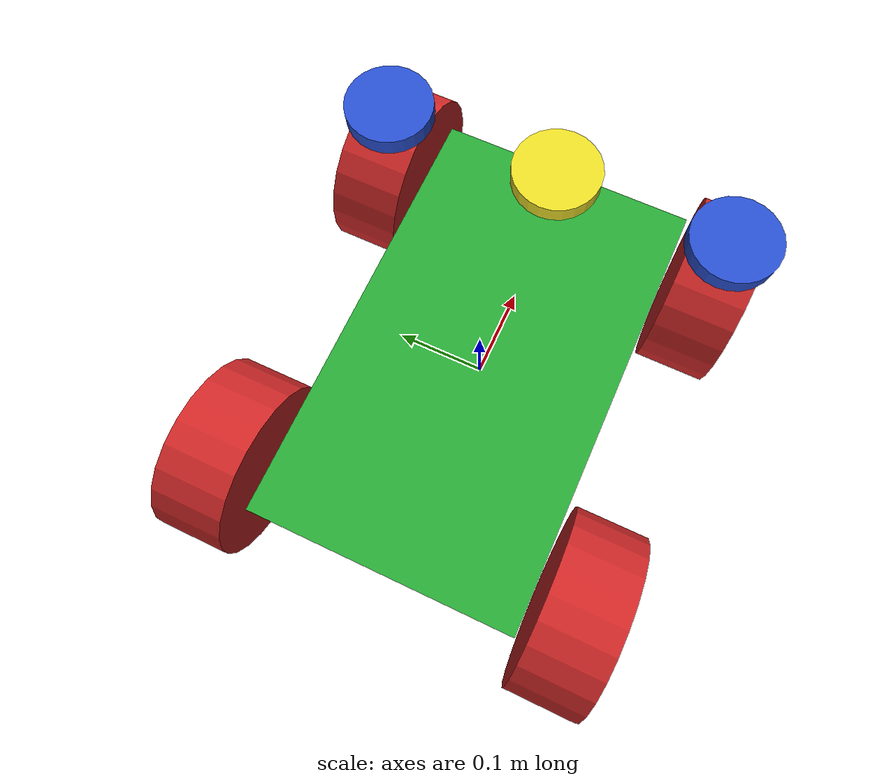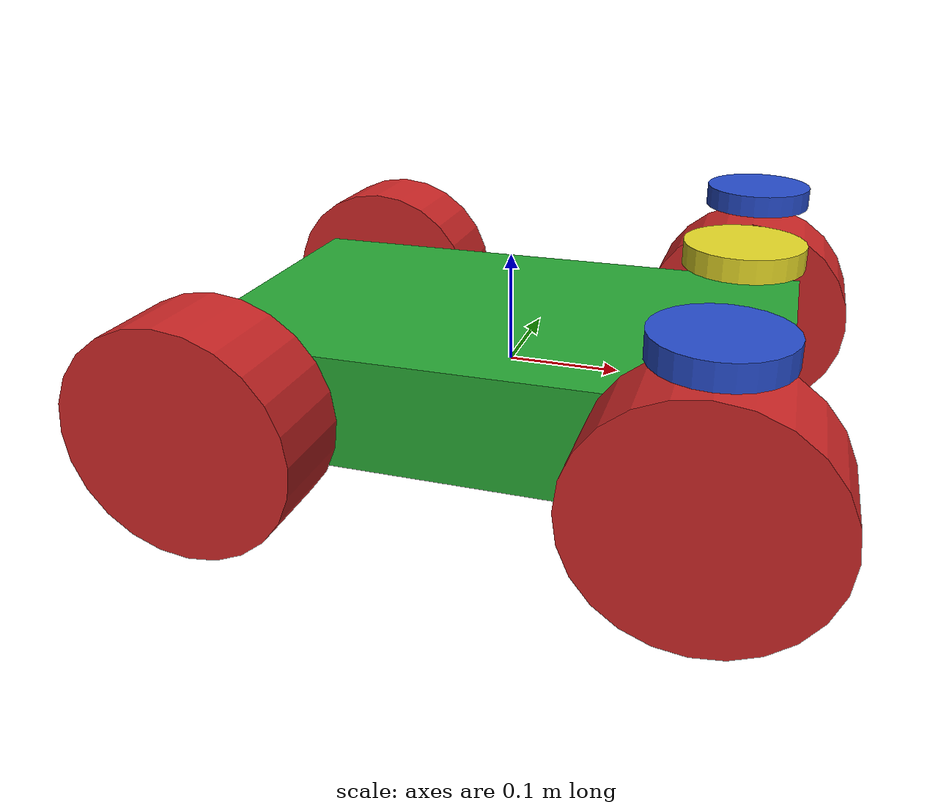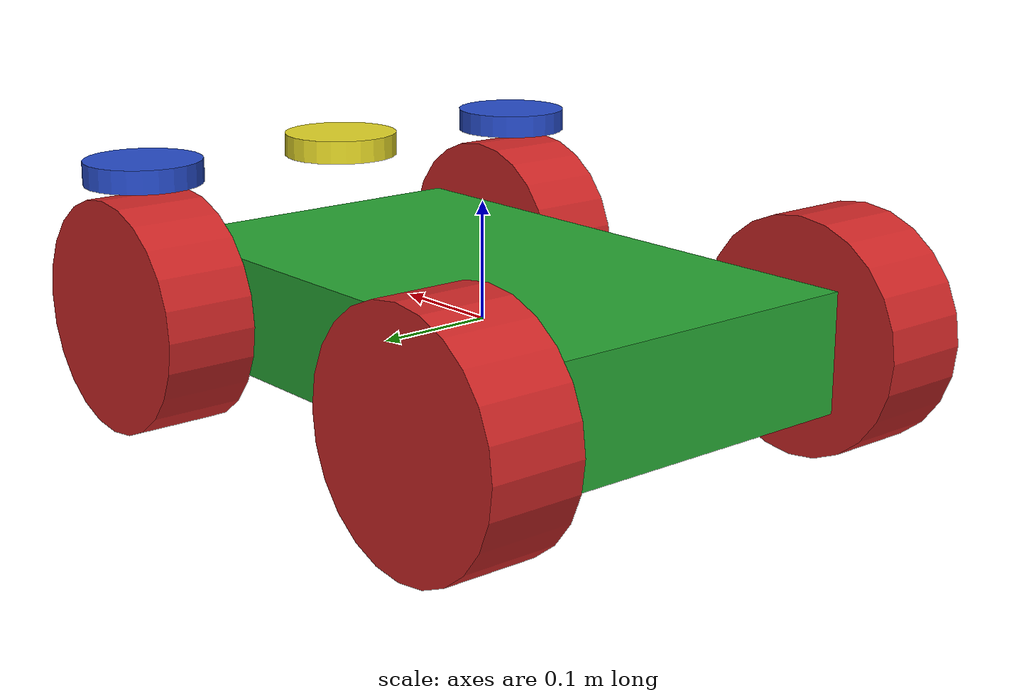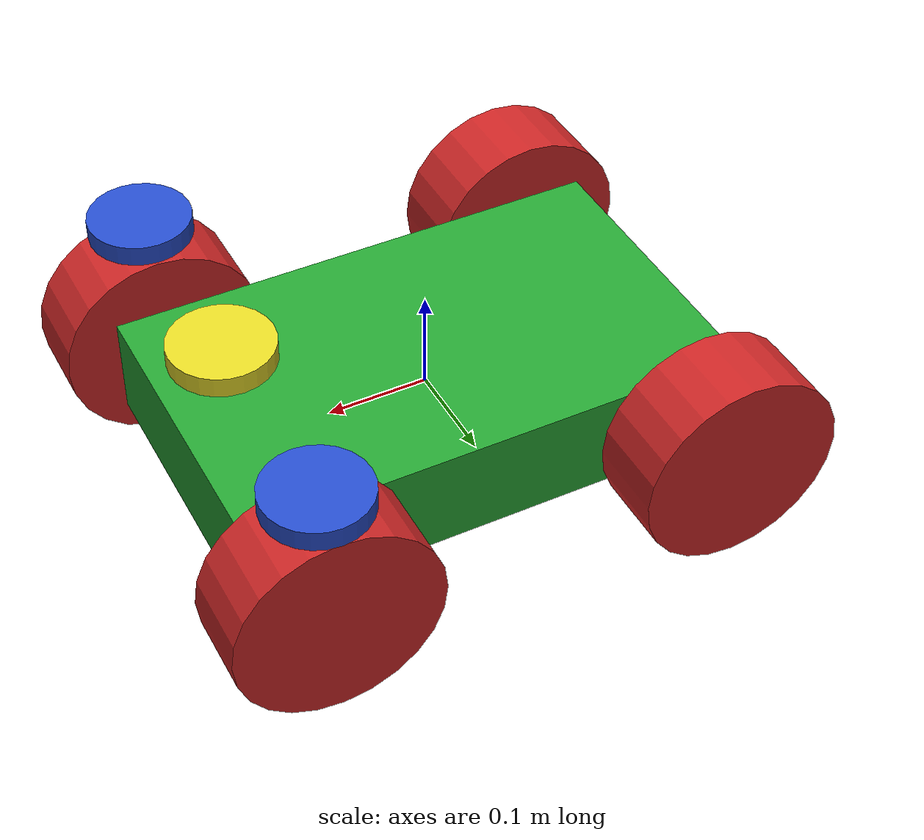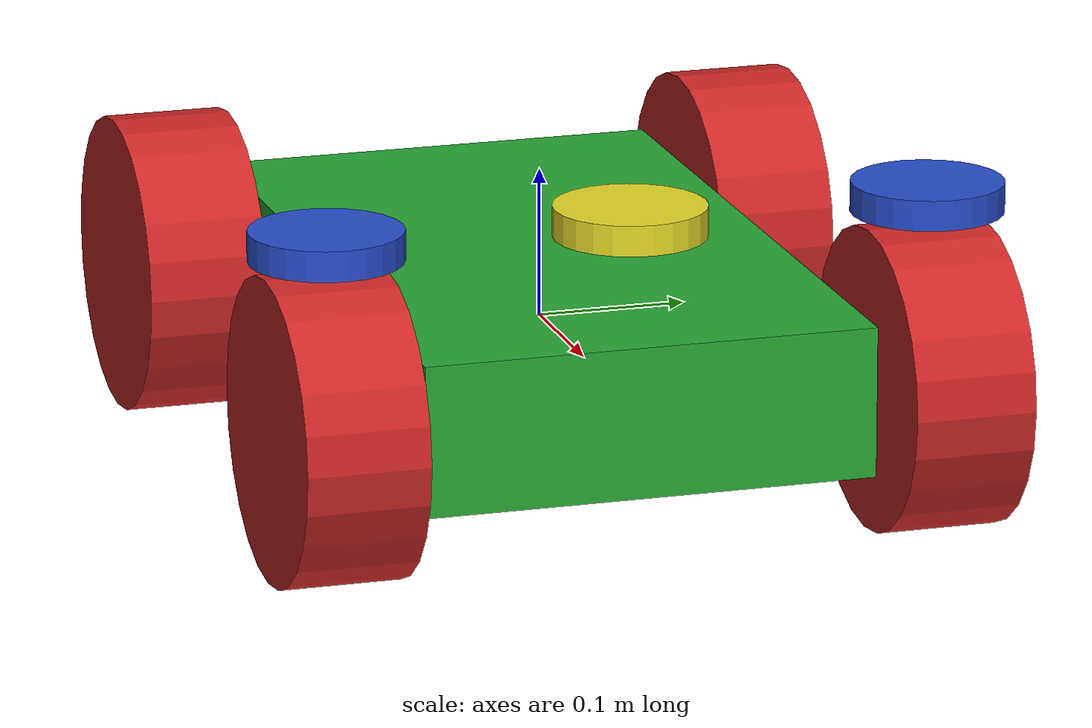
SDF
<?xml version="1.0" ?>
<sdf version='1.7'>
  <model name='steer_bot'>
    <link name='base_link'>
      <inertial>
        <pose>0 0 0 0 -0 0</pose>
        <mass>5</mass>
        <inertia>
          <ixx>0.0416667</ixx>
          <ixy>0</ixy>
          <ixz>0</ixz>
          <iyy>0.108333</iyy>
          <iyz>0</iyz>
          <izz>0.141667</izz>
        </inertia>
      </inertial>
      <collision name='base_link_collision'>
        <pose>0 0 0 0 -0 0</pose>
        <geometry>
          <box>
            <size>0.5 0.3 0.1</size>
          </box>
        </geometry>
        <surface>
          <contact>
            <ode/>
          </contact>
          <friction>
            <ode/>
          </friction>
        </surface>
      </collision>
      <visual name='base_link_visual'>
        <pose>0 0 0 0 -0 0</pose>
        <geometry>
          <box>
            <size>0.5 0.3 0.1</size>
          </box>
        </geometry>
        <material>
          <script>
            <name>Gazebo/Green</name>
            <uri>file://media/materials/scripts/gazebo.material</uri>
          </script>
        </material>
      </visual>
      <gravity>1</gravity>
      <velocity_decay/>
    </link>
    <joint name='front_left_steer_joint' type='revolute'>
      <pose relative_to='base_link'>0.2 0.2 0.12 0 -0 0</pose>
      <parent>base_link</parent>
      <child>front_left_steer_link</child>
      <axis>
        <xyz>0 0 1</xyz>
        <limit>
          <lower>-3.14159</lower>
          <upper>3.14159</upper>
          <effort>10</effort>
          <velocity>5</velocity>
        </limit>
        <dynamics>
          <spring_reference>0</spring_reference>
          <spring_stiffness>0</spring_stiffness>
        </dynamics>
      </axis>
    </joint>
    <link name='front_left_steer_link'>
      <pose relative_to='front_left_steer_joint'>0 0 0 0 -0 0</pose>
      <inertial>
        <pose>0 0 0 0 -0 0</pose>
        <mass>1</mass>
        <inertia>
          <ixx>0.000658333</ixx>
          <ixy>0</ixy>
          <ixz>0</ixz>
          <iyy>0.000658333</iyy>
          <iyz>0</iyz>
          <izz>0.00125</izz>
        </inertia>
      </inertial>
      <collision name='front_left_steer_link_collision'>
        <pose>0 0 0 0 -0 0</pose>
        <geometry>
          <cylinder>
            <length>0.02</length>
            <radius>0.05</radius>
          </cylinder>
        </geometry>
        <surface>
          <contact>
            <ode/>
          </contact>
          <friction>
            <ode/>
          </friction>
        </surface>
      </collision>
      <visual name='front_left_steer_link_visual'>
        <pose>0 0 0 0 -0 0</pose>
        <geometry>
          <cylinder>
            <length>0.02</length>
            <radius>0.05</radius>
          </cylinder>
        </geometry>
        <material>
          <script>
            <name>Gazebo/Blue</name>
            <uri>file://media/materials/scripts/gazebo.material</uri>
          </script>
        </material>
      </visual>
      <gravity>1</gravity>
      <velocity_decay/>
    </link>
    <joint name='front_left_wheel_joint' type='revolute'>
      <pose relative_to='front_left_steer_link'>0 0 -0.12 -1.5708 0 0</pose>
      <parent>front_left_steer_link</parent>
      <child>front_left_wheel_link</child>
      <axis>
        <xyz>0 0 1</xyz>
        <limit>
          <lower>-1e+16</lower>
          <upper>1e+16</upper>
        </limit>
        <dynamics>
          <spring_reference>0</spring_reference>
          <spring_stiffness>0</spring_stiffness>
        </dynamics>
      </axis>
    </joint>
    <link name='front_left_wheel_link'>
      <pose relative_to='front_left_wheel_joint'>0 0 0 0 -0 0</pose>
      <inertial>
        <pose>0 0 0 0 -0 0</pose>
        <mass>1</mass>
        <inertia>
          <ixx>0.00303333</ixx>
          <ixy>0</ixy>
          <ixz>0</ixz>
          <iyy>0.00303333</iyy>
          <iyz>0</iyz>
          <izz>0.005</izz>
        </inertia>
      </inertial>
      <collision name='front_left_wheel_link_collision'>
        <pose>0 0 0 0 -0 0</pose>
        <geometry>
          <cylinder>
            <length>0.08</length>
            <radius>0.1</radius>
          </cylinder>
        </geometry>
        <surface>
          <contact>
            <ode/>
          </contact>
          <friction>
            <ode/>
          </friction>
        </surface>
      </collision>
      <visual name='front_left_wheel_link_visual'>
        <pose>0 0 0 0 -0 0</pose>
        <geometry>
          <cylinder>
            <length>0.08</length>
            <radius>0.1</radius>
          </cylinder>
        </geometry>
        <material>
          <script>
            <name>Gazebo/Red</name>
            <uri>file://media/materials/scripts/gazebo.material</uri>
          </script>
        </material>
      </visual>
      <gravity>1</gravity>
      <velocity_decay/>
    </link>
    <joint name='front_right_steer_joint' type='revolute'>
      <pose relative_to='base_link'>0.2 -0.2 0.12 0 -0 0</pose>
      <parent>base_link</parent>
      <child>front_right_steer_link</child>
      <axis>
        <xyz>0 0 1</xyz>
        <limit>
          <lower>-3.14159</lower>
          <upper>3.14159</upper>
          <effort>10</effort>
          <velocity>5</velocity>
        </limit>
        <dynamics>
          <spring_reference>0</spring_reference>
          <spring_stiffness>0</spring_stiffness>
        </dynamics>
      </axis>
    </joint>
    <link name='front_right_steer_link'>
      <pose relative_to='front_right_steer_joint'>0 0 0 0 -0 0</pose>
      <inertial>
        <pose>0 0 0 0 -0 0</pose>
        <mass>1</mass>
        <inertia>
          <ixx>0.000658333</ixx>
          <ixy>0</ixy>
          <ixz>0</ixz>
          <iyy>0.000658333</iyy>
          <iyz>0</iyz>
          <izz>0.00125</izz>
        </inertia>
      </inertial>
      <collision name='front_right_steer_link_collision'>
        <pose>0 0 0 0 -0 0</pose>
        <geometry>
          <cylinder>
            <length>0.02</length>
            <radius>0.05</radius>
          </cylinder>
        </geometry>
        <surface>
          <contact>
            <ode/>
          </contact>
          <friction>
            <ode/>
          </friction>
        </surface>
      </collision>
      <visual name='front_right_steer_link_visual'>
        <pose>0 0 0 0 -0 0</pose>
        <geometry>
          <cylinder>
            <length>0.02</length>
            <radius>0.05</radius>
          </cylinder>
        </geometry>
        <material>
          <script>
            <name>Gazebo/Blue</name>
            <uri>file://media/materials/scripts/gazebo.material</uri>
          </script>
        </material>
      </visual>
      <gravity>1</gravity>
      <velocity_decay/>
    </link>
    <joint name='front_right_wheel_joint' type='revolute'>
      <pose relative_to='front_right_steer_link'>0 0 -0.12 -1.5708 0 0</pose>
      <parent>front_right_steer_link</parent>
      <child>front_right_wheel_link</child>
      <axis>
        <xyz>0 0 1</xyz>
        <limit>
          <lower>-1e+16</lower>
          <upper>1e+16</upper>
        </limit>
        <dynamics>
          <spring_reference>0</spring_reference>
          <spring_stiffness>0</spring_stiffness>
        </dynamics>
      </axis>
    </joint>
    <link name='front_right_wheel_link'>
      <pose relative_to='front_right_wheel_joint'>0 0 0 0 -0 0</pose>
      <inertial>
        <pose>0 0 0 0 -0 0</pose>
        <mass>1</mass>
        <inertia>
          <ixx>0.00303333</ixx>
          <ixy>0</ixy>
          <ixz>0</ixz>
          <iyy>0.00303333</iyy>
          <iyz>0</iyz>
          <izz>0.005</izz>
        </inertia>
      </inertial>
      <collision name='front_right_wheel_link_collision'>
        <pose>0 0 0 0 -0 0</pose>
        <geometry>
          <cylinder>
            <length>0.08</length>
            <radius>0.1</radius>
          </cylinder>
        </geometry>
        <surface>
          <contact>
            <ode/>
          </contact>
          <friction>
            <ode/>
          </friction>
        </surface>
      </collision>
      <visual name='front_right_wheel_link_visual'>
        <pose>0 0 0 0 -0 0</pose>
        <geometry>
          <cylinder>
            <length>0.08</length>
            <radius>0.1</radius>
          </cylinder>
        </geometry>
        <material>
          <script>
            <name>Gazebo/Red</name>
            <uri>file://media/materials/scripts/gazebo.material</uri>
          </script>
        </material>
      </visual>
      <gravity>1</gravity>
      <velocity_decay/>
    </link>
    <joint name='front_steer_joint' type='revolute'>
      <pose relative_to='base_link'>0.2 0 0.12 0 -0 0</pose>
      <parent>base_link</parent>
      <child>front_steer_link</child>
      <axis>
        <xyz>0 0 1</xyz>
        <limit>
          <lower>-3.14159</lower>
          <upper>3.14159</upper>
          <effort>10</effort>
          <velocity>5</velocity>
        </limit>
        <dynamics>
          <spring_reference>0</spring_reference>
          <spring_stiffness>0</spring_stiffness>
        </dynamics>
      </axis>
    </joint>
    <link name='front_steer_link'>
      <pose relative_to='front_steer_joint'>0 0 0 0 -0 0</pose>
      <inertial>
        <pose>0 0 0 0 -0 0</pose>
        <mass>1</mass>
        <inertia>
          <ixx>0.000658333</ixx>
          <ixy>0</ixy>
          <ixz>0</ixz>
          <iyy>0.000658333</iyy>
          <iyz>0</iyz>
          <izz>0.00125</izz>
        </inertia>
      </inertial>
      <collision name='front_steer_link_collision'>
        <pose>0 0 0 0 -0 0</pose>
        <geometry>
          <cylinder>
            <length>0.02</length>
            <radius>0.05</radius>
          </cylinder>
        </geometry>
        <surface>
          <contact>
            <ode/>
          </contact>
          <friction>
            <ode/>
          </friction>
        </surface>
      </collision>
      <visual name='front_steer_link_visual'>
        <pose>0 0 0 0 -0 0</pose>
        <geometry>
          <cylinder>
            <length>0.02</length>
            <radius>0.05</radius>
          </cylinder>
        </geometry>
        <material>
          <script>
            <name>Gazebo/Yellow</name>
            <uri>file://media/materials/scripts/gazebo.material</uri>
          </script>
        </material>
      </visual>
      <gravity>1</gravity>
      <velocity_decay/>
    </link>
    <joint name='rear_left_wheel_joint' type='revolute'>
      <pose relative_to='base_link'>-0.2 0.2 0 -1.5708 0 0</pose>
      <parent>base_link</parent>
      <child>rear_left_wheel_link</child>
      <axis>
        <xyz>0 0 1</xyz>
        <limit>
          <lower>-1e+16</lower>
          <upper>1e+16</upper>
        </limit>
        <dynamics>
          <spring_reference>0</spring_reference>
          <spring_stiffness>0</spring_stiffness>
        </dynamics>
      </axis>
    </joint>
    <link name='rear_left_wheel_link'>
      <pose relative_to='rear_left_wheel_joint'>0 0 0 0 -0 0</pose>
      <inertial>
        <pose>0 0 0 0 -0 0</pose>
        <mass>1</mass>
        <inertia>
          <ixx>0.00303333</ixx>
          <ixy>0</ixy>
          <ixz>0</ixz>
          <iyy>0.00303333</iyy>
          <iyz>0</iyz>
          <izz>0.005</izz>
        </inertia>
      </inertial>
      <collision name='rear_left_wheel_link_collision'>
        <pose>0 0 0 0 -0 0</pose>
        <geometry>
          <cylinder>
            <length>0.08</length>
            <radius>0.1</radius>
          </cylinder>
        </geometry>
        <surface>
          <contact>
            <ode/>
          </contact>
          <friction>
            <ode/>
          </friction>
        </surface>
      </collision>
      <visual name='rear_left_wheel_link_visual'>
        <pose>0 0 0 0 -0 0</pose>
        <geometry>
          <cylinder>
            <length>0.08</length>
            <radius>0.1</radius>
          </cylinder>
        </geometry>
        <material>
          <script>
            <name>Gazebo/Red</name>
            <uri>file://media/materials/scripts/gazebo.material</uri>
          </script>
        </material>
      </visual>
      <gravity>1</gravity>
      <velocity_decay/>
    </link>
    <joint name='rear_right_wheel_joint' type='revolute'>
      <pose relative_to='base_link'>-0.2 -0.2 0 -1.5708 0 0</pose>
      <parent>base_link</parent>
      <child>rear_right_wheel_link</child>
      <axis>
        <xyz>0 0 1</xyz>
        <limit>
          <lower>-1e+16</lower>
          <upper>1e+16</upper>
        </limit>
        <dynamics>
          <spring_reference>0</spring_reference>
          <spring_stiffness>0</spring_stiffness>
        </dynamics>
      </axis>
    </joint>
    <link name='rear_right_wheel_link'>
      <pose relative_to='rear_right_wheel_joint'>0 0 0 0 -0 0</pose>
      <inertial>
        <pose>0 0 0 0 -0 0</pose>
        <mass>1</mass>
        <inertia>
          <ixx>0.00303333</ixx>
          <ixy>0</ixy>
          <ixz>0</ixz>
          <iyy>0.00303333</iyy>
          <iyz>0</iyz>
          <izz>0.005</izz>
        </inertia>
      </inertial>
      <collision name='rear_right_wheel_link_collision'>
        <pose>0 0 0 0 -0 0</pose>
        <geometry>
          <cylinder>
            <length>0.08</length>
            <radius>0.1</radius>
          </cylinder>
        </geometry>
        <surface>
          <contact>
            <ode/>
          </contact>
          <friction>
            <ode/>
          </friction>
        </surface>
      </collision>
      <visual name='rear_right_wheel_link_visual'>
        <pose>0 0 0 0 -0 0</pose>
        <geometry>
          <cylinder>
            <length>0.08</length>
            <radius>0.1</radius>
          </cylinder>
        </geometry>
        <material>
          <script>
            <name>Gazebo/Red</name>
            <uri>file://media/materials/scripts/gazebo.material</uri>
          </script>
        </material>
      </visual>
      <gravity>1</gravity>
      <velocity_decay/>
    </link>
    <joint name='rear_wheel_joint' type='revolute'>
      <pose relative_to='base_link'>-0.2 0 0 -1.5708 0 0</pose>
      <parent>base_link</parent>
      <child>rear_wheel_link</child>
      <axis>
        <xyz>0 0 1</xyz>
        <limit>
          <lower>-1e+16</lower>
          <upper>1e+16</upper>
        </limit>
        <dynamics>
          <spring_reference>0</spring_reference>
          <spring_stiffness>0</spring_stiffness>
        </dynamics>
      </axis>
    </joint>
    <link name='rear_wheel_link'>
      <pose relative_to='rear_wheel_joint'>0 0 0 0 -0 0</pose>
      <inertial>
        <pose>0 0 0 0 -0 0</pose>
        <mass>0.03125</mass>
        <inertia>
          <ixx>9.04948e-06</ixx>
          <ixy>0</ixy>
          <ixz>0</ixz>
          <iyy>9.04948e-06</iyy>
          <iyz>0</iyz>
          <izz>9.76563e-06</izz>
        </inertia>
      </inertial>
      <collision name='rear_wheel_link_collision'>
        <pose>0 0 0 0 -0 0</pose>
        <geometry>
          <cylinder>
            <length>0.04</length>
            <radius>0.025</radius>
          </cylinder>
        </geometry>
        <surface>
          <contact>
            <ode/>
          </contact>
          <friction>
            <ode/>
          </friction>
        </surface>
      </collision>
      <visual name='rear_wheel_link_visual'>
        <pose>0 0 0 0 -0 0</pose>
        <geometry>
          <cylinder>
            <length>0.04</length>
            <radius>0.025</radius>
          </cylinder>
        </geometry>
        <material>
          <script>
            <name>Gazebo/Yellow</name>
            <uri>file://media/materials/scripts/gazebo.material</uri>
          </script>
        </material>
      </visual>
      <gravity>1</gravity>
      <velocity_decay/>
    </link>
    <static>0</static>
  </model>
</sdf>
